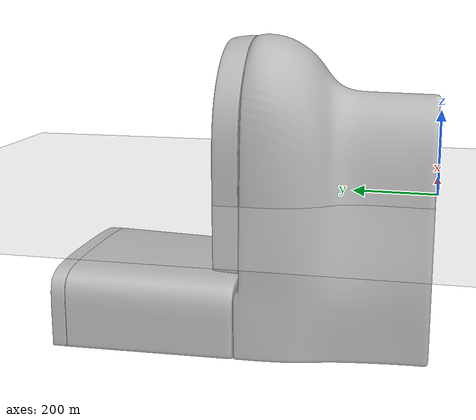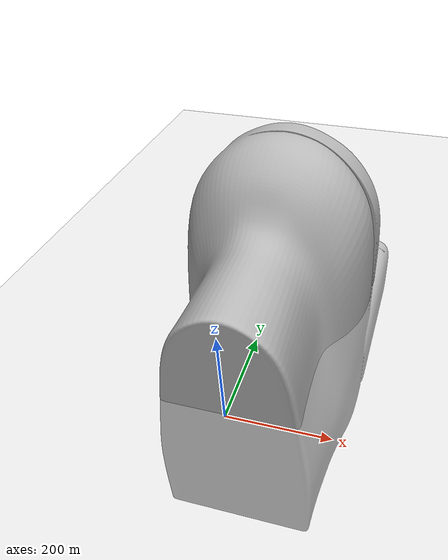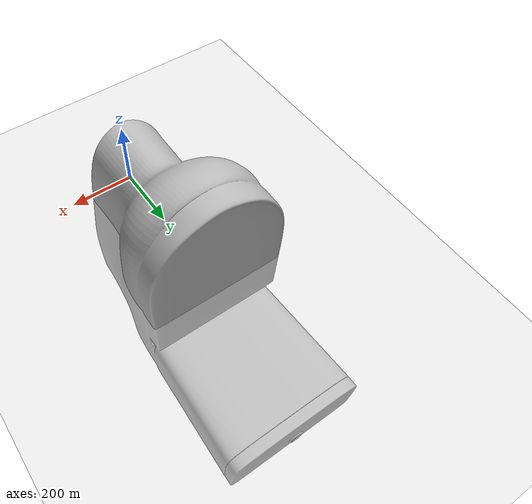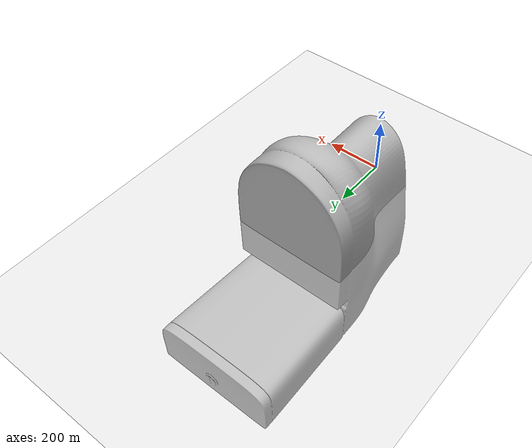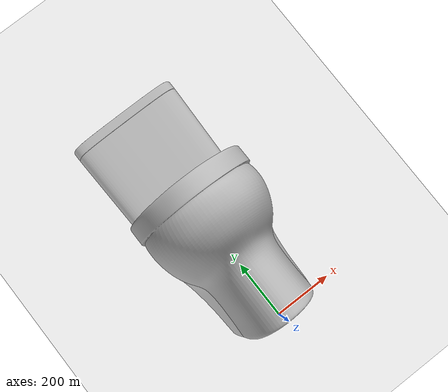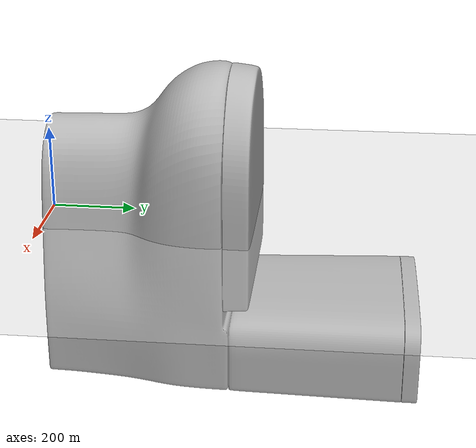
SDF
<sdf version="1.6">
 <world name="world">
  <gravity>0 0 -9.8</gravity>
  <physics default="0" name="default_physics" type="ode">
   <max_step_size>0.001</max_step_size>
   <real_time_factor>1</real_time_factor>
   <real_time_update_rate>1000</real_time_update_rate>
  </physics>
  <include><uri>model://ground_plane</uri></include>
  <model name="camera1">
   <static>true</static>
   <pose>4.4 5 6.4 0 1.57 1.57</pose>
   <link name="link1">
    <visual name="visual"><geometry><box><size>0.1 0.1 0.1</size></box></geometry></visual>
    <sensor name="my_camera1" type="camera">
     <camera>
      <save enabled="true"><path>/home/roya/catkin_ws/src/risk_aware_planning/src/results/camera1</path></save>
      <horizontal_fov>1.047</horizontal_fov>
      <image><width>1920</width><height>1080</height></image>
      <clip><near>0.1</near><far>50</far></clip>
     </camera>
     <always_on>1</always_on>
     <update_rate>30</update_rate>
    </sensor>
   </link>
  </model>
  <model name="camera2">
   <static>true</static>
   <pose>1.86539 6.39185 2.8575 0 0.657796 -0.349976</pose>
   <link name="link2">
    <visual name="visual"><geometry><box><size>0.01 0.01 0.01</size></box></geometry></visual>
    <sensor name="my_camera2" type="camera">
     <camera>
      <save enabled="true"><path>/home/roya/catkin_ws/src/risk_aware_planning/src/results/camera2</path></save>
      <horizontal_fov>1.047</horizontal_fov>
      <image><width>1920</width><height>1080</height></image>
      <clip><near>0.1</near><far>50</far></clip>
     </camera>
     <always_on>1</always_on>
     <update_rate>30</update_rate>
    </sensor>
   </link>
  </model>
  <model name="camera3">
   <static>true</static>
   <pose>6.62566 6.24361 2.60285 0 0.541796 -2.60116</pose>
   <link name="link3">
    <visual name="visual"><geometry><box><size>0.01 0.01 0.01</size></box></geometry></visual>
    <sensor name="my_camera3" type="camera">
     <camera>
      <save enabled="true"><path>/home/roya/catkin_ws/src/risk_aware_planning/src/results/camera3</path></save>
      <horizontal_fov>1.047</horizontal_fov>
      <image><width>1920</width><height>1080</height></image>
      <clip><near>0.1</near><far>50</far></clip>
     </camera>
     <always_on>1</always_on>
     <update_rate>30</update_rate>
    </sensor>
   </link>
  </model>
  <model name="P22_IF_walls"><include><uri>model://P22_IF_walls</uri></include><pose>5 5 0 0 0 0</pose></model>
  <model name="Toilet">
   <include><uri>model://Toilet</uri><static>false</static></include>
   <pose>2.3 4.6 0 0 0 0</pose>
  </model>
  <light name="ceiling_light_0" type="spot">
   <pose>5 5 7 0 0 0</pose>
   <diffuse>0.494118 0.494118 0.494118 1</diffuse>
   <specular>0.0941176 0.0941176 0.0941176 1</specular>
   <direction>0 0 -1</direction>
   <attenuation>
    <range>20</range>
    <constant>0.8</constant>
    <linear>0.1</linear>
    <quadratic>0.001</quadratic>
   </attenuation>
   <cast_shadows>0</cast_shadows>
   <spot><inner_angle>1.0</inner_angle><outer_angle>2.5</outer_angle><falloff>1</falloff></spot>
  </light>
 </world>
</sdf>

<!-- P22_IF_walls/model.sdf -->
<sdf version='1.6'>
  <model name='P22-IF'>
    <pose frame=''>-0.880315 -0.256219 0 0 -0 0</pose>
    <link name='Wall_12'>
      <collision name='Wall_12_Collision'>
        <geometry>
          <box>
            <size>1 0.12 2.5</size>
          </box>
        </geometry>
        <pose frame=''>0 0 1.25 0 -0 0</pose>
      </collision>
      <visual name='Wall_12_Visual'>
        <pose frame=''>0 0 1.25 0 -0 0</pose>
        <geometry>
          <box>
            <size>1 0.12 2.5</size>
          </box>
        </geometry>
        <material>
          <script>
            <uri>file://media/materials/scripts/gazebo.material</uri>
            <name>Gazebo/Grey</name>
          </script>
          <ambient>1 1 1 1</ambient>
        </material>
        <meta>
          <layer>0</layer>
        </meta>
      </visual>
      <pose frame=''>-1.604369 0.42219 0 0 -0 0</pose>
    </link>
    <link name='Wall_13'>
      <pose frame=''>-0.56 0.03 0 0 -0 -0.62</pose>
      <visual name='Wall_13_Visual_0'>
        <pose frame=''>-0.6 0 1.25 0 -0 0</pose>
        <geometry>
          <box>
            <size>0.2 0.12 2.5</size>
          </box>
        </geometry>
        <material>
          <script>
            <uri>file://media/materials/scripts/gazebo.material</uri>
            <name>Gazebo/Grey</name>
          </script>
          <ambient>1 1 1 1</ambient>
        </material>
        <meta>
          <layer>0</layer>
        </meta>
      </visual>
      <collision name='Wall_13_Collision_0'>
        <geometry>
          <box>
            <size>0.2 0.12 2.5</size>
          </box>
        </geometry>
        <pose frame=''>-0.6 0 1.25 0 -0 0</pose>
      </collision>
      <visual name='Wall_13_Visual_1'>
        <pose frame=''>0.43 0 1.25 0 -0 0</pose>
        <geometry>
          <box>
            <size>0.3 0.12 2.5</size>
          </box>
        </geometry>
        <material>
          <script>
            <uri>file://media/materials/scripts/gazebo.material</uri>
            <name>Gazebo/Grey</name>
          </script>
          <ambient>1 1 1 1</ambient>
        </material>
        <meta>
          <layer>0</layer>
        </meta>
      </visual>
      <collision name='Wall_13_Collision_1'>
        <geometry>
          <box>
            <size>0.3 0.12 2.5</size>
          </box>
        </geometry>
        <pose frame=''>0.43 0 1.25 0 -0 0</pose>
      </collision>
      <visual name='Wall_13_Visual_2'>
        <pose frame=''>-0.173235 0 2.25 0 -0 0</pose>
        <geometry>
          <box>
            <size>1 0.12 0.5</size>
          </box>
        </geometry>
        <material>
          <script>
            <uri>file://media/materials/scripts/gazebo.material</uri>
            <name>Gazebo/Grey</name>
          </script>
          <ambient>1 1 1 1</ambient>
        </material>
        <meta>
          <layer>0</layer>
        </meta>
      </visual>
      <collision name='Wall_13_Collision_2'>
        <geometry>
          <box>
            <size>1 0.12 0.5</size>
          </box>
        </geometry>
        <pose frame=''>-0.173235 0 2.25 0 -0 0</pose>
      </collision>
    </link>
    <link name='Wall_14'>
      <collision name='Wall_14_Collision'>
        <geometry>
          <box>
            <size>1 0.12 2.5</size>
          </box>
        </geometry>
        <pose frame=''>0 0 1.25 0 -0 0</pose>
      </collision>
      <visual name='Wall_14_Visual'>
        <pose frame=''>0 0 1.25 0 -0 0</pose>
        <geometry>
          <box>
            <size>1 0.12 2.5</size>
          </box>
          <scale>0.8 0.8 0.8</scale>
        </geometry>
        <material>
          <script>
            <uri>file://media/materials/scripts/gazebo.material</uri>
            <name>Gazebo/Grey</name>
          </script>
          <ambient>1 1 1 1</ambient>
        </material>
        <meta>
          <layer>0</layer>
        </meta>
      </visual>
      <pose frame=''>-0.112685 -0.775378 0 0 -0 -1.5708</pose>
    </link>
    <link name='Wall_16'>
      <collision name='Wall_16_Collision'>
        <geometry>
          <box>
            <size>3 0.12 2.5</size>
          </box>
        </geometry>
        <pose frame=''>0 0 1.25 0 -0 0</pose>
      </collision>
      <visual name='Wall_16_Visual'>
        <pose frame=''>0 0 1.25 0 -0 0</pose>
        <geometry>
          <box>
            <size>3 0.12 2.5</size>
          </box>
        </geometry>
        <material>
          <script>
            <uri>file://media/materials/scripts/gazebo.material</uri>
            <name>Gazebo/Grey</name>
          </script>
          <ambient>1 1 1 1</ambient>
        </material>
        <meta>
          <layer>0</layer>
        </meta>
      </visual>
      <pose frame=''>1.29431 -1.30378 0 0 -0 3.14159</pose>
    </link>
    <link name='Wall_18'>
      <collision name='Wall_18_Collision'>
        <geometry>
          <box>
            <size>2.009428 0.12 2.5</size>
          </box>
        </geometry>
        <pose frame=''>0 0 1.25 0 -0 0</pose>
      </collision>
      <visual name='Wall_18_Visual'>
        <pose frame=''>0 0 1.25 0 -0 0</pose>
        <geometry>
          <box>
            <size>2.009428 0.12 2.5</size>
          </box>
        </geometry>
        <material>
          <script>
            <uri>file://media/materials/scripts/gazebo.material</uri>
            <name>Gazebo/CeilingTiled</name>
          </script>
          <ambient>0.921569 0.807843 0.615686 1</ambient>
        </material>
        <meta>
          <layer>0</layer>
        </meta>
      </visual>
      <pose frame=''>-1.12819 -1.30378 0 0 -0 3.14159</pose>
    </link>
    <link name='Wall_19'>
      <collision name='Wall_19_Collision'>
        <geometry>
          <box>
            <size>1.8 0.12 2.5</size>
          </box>
        </geometry>
        <pose frame=''>0 0 1.25 0 -0 0</pose>
      </collision>
      <visual name='Wall_19_Visual'>
        <pose frame=''>0 0 1.25 0 -0 0</pose>
        <geometry>
          <box>
            <size>1.8 0.12 2.5</size>
          </box>
        </geometry>
        <material>
          <script>
            <uri>file://media/materials/scripts/gazebo.material</uri>
            <name>Gazebo/CeilingTiled</name>
          </script>
          <ambient>0.921569 0.807843 0.615686 1</ambient>
        </material>
        <meta>
          <layer>0</layer>
        </meta>
      </visual>
      <pose frame=''>-2.12218 -0.475781 0 0 -0 1.58762</pose>
    </link>
    <link name='Wall_21'>
      <pose frame=''>-2.14219 1.1 0 0 -0 1.56898</pose>
      <visual name='Wall_21_Visual_0'>
        <pose frame=''>-0.55 0 1.25 0 -0 0</pose>
        <geometry>
          <box>
            <size>0.25 0.12 2.5</size>
          </box>
        </geometry>
        <material>
          <script>
            <uri>file://media/materials/scripts/gazebo.material</uri>
            <name>Gazebo/Grey</name>
          </script>
          <ambient>1 1 1 1</ambient>
        </material>
        <meta>
          <layer>0</layer>
        </meta>
      </visual>
      <collision name='Wall_21_Collision_0'>
        <geometry>
          <box>
            <size>0.25 0.12 2.5</size>
          </box>
        </geometry>
        <pose frame=''>-0.55 0 1.25 0 -0 0</pose>
      </collision>
      <visual name='Wall_21_Visual_1'>
        <pose frame=''>0.55 0 1.25 0 -0 0</pose>
        <geometry>
          <box>
            <size>0.25 0.12 2.5</size>
          </box>
        </geometry>
        <material>
          <script>
            <uri>file://media/materials/scripts/gazebo.material</uri>
            <name>Gazebo/Grey</name>
          </script>
          <ambient>1 1 1 1</ambient>
        </material>
        <meta>
          <layer>0</layer>
        </meta>
      </visual>
      <collision name='Wall_21_Collision_1'>
        <geometry>
          <box>
            <size>0.25 0.12 2.5</size>
          </box>
        </geometry>
        <pose frame=''>0.55 0 1.25 0 -0 0</pose>
      </collision>
      <visual name='Wall_21_Visual_2'>
        <pose frame=''>0 0 2.25 0 -0 0</pose>
        <geometry>
          <box>
            <size>1.1 0.12 0.5</size>
          </box>
        </geometry>
        <material>
          <script>
            <uri>file://media/materials/scripts/gazebo.material</uri>
            <name>Gazebo/Grey</name>
          </script>
          <ambient>1 1 1 1</ambient>
        </material>
        <meta>
          <layer>0</layer>
        </meta>
      </visual>
      <collision name='Wall_21_Collision_2'>
        <geometry>
          <box>
            <size>1 0.12 0.5</size>
          </box>
        </geometry>
        <pose frame=''>0 0 2.25 0 -0 0</pose>
      </collision>
    </link>
    <link name='Wall_23'>
      <pose frame=''>2.72681 0.000219 0 0 -0 -1.56248</pose>
      <visual name='Wall_23_Visual_0'>
        <pose frame=''>-1.58201 0 1.25 0 -0 0</pose>
        <geometry>
          <box>
            <size>0.504748 0.12 2.5</size>
          </box>
        </geometry>
        <material>
          <script>
            <uri>file://media/materials/scripts/gazebo.material</uri>
            <name>Gazebo/Grey</name>
          </script>
          <ambient>1 1 1 1</ambient>
        </material>
        <meta>
          <layer>0</layer>
        </meta>
      </visual>
      <collision name='Wall_23_Collision_0'>
        <geometry>
          <box>
            <size>0.504748 0.12 2.5</size>
          </box>
        </geometry>
        <pose frame=''>-1.58201 0 1.25 0 -0 0</pose>
      </collision>
      <visual name='Wall_23_Visual_1'>
        <pose frame=''>0.0077374 0 0.5 0 -0 0</pose>
        <geometry>
          <box>
            <size>2.7403 0.12 1</size>
          </box>
        </geometry>
        <material>
          <script>
            <uri>file://media/materials/scripts/gazebo.material</uri>
            <name>Gazebo/Grey</name>
          </script>
          <ambient>1 1 1 1</ambient>
        </material>
        <meta>
          <layer>0</layer>
        </meta>
      </visual>
      <collision name='Wall_23_Collision_1'>
        <geometry>
          <box>
            <size>2.7403 0.12 1</size>
          </box>
        </geometry>
        <pose frame=''>0.0077374 0 0.5 0 -0 0</pose>
      </collision>
      <visual name='Wall_23_Visual_2'>
        <pose frame=''>0.46254 0 1.75 0 -0 0</pose>
        <geometry>
          <box>
            <size>1.823368 0.12 1.5</size>
          </box>
        </geometry>
        <material>
          <script>
            <uri>file://media/materials/scripts/gazebo.material</uri>
            <name>Gazebo/Grey</name>
          </script>
          <ambient>1 1 1 1</ambient>
        </material>
        <meta>
          <layer>0</layer>
        </meta>
      </visual>
      <collision name='Wall_23_Collision_2'>
        <geometry>
          <box>
            <size>1.823368 0.12 1.5</size>
          </box>
        </geometry>
        <pose frame=''>0.46254 0 1.75 0 -0 0</pose>
      </collision>
      <visual name='Wall_23_Visual_3'>
        <pose frame=''>-0.919469 0 2.25 0 -0 0</pose>
        <geometry>
          <box>
            <size>1.053034 0.12 0.5</size>
          </box>
        </geometry>
        <material>
          <script>
            <uri>file://media/materials/scripts/gazebo.material</uri>
            <name>Gazebo/Grey</name>
          </script>
          <ambient>1 1 1 1</ambient>
        </material>
        <meta>
          <layer>0</layer>
        </meta>
      </visual>
      <collision name='Wall_23_Collision_3'>
        <geometry>
          <box>
            <size>1.053034 0.12 0.5</size>
          </box>
        </geometry>
        <pose frame=''>-0.919469 0 2.25 0 -0 0</pose>
      </collision>
    </link>
    <link name='Wall_7'>
      <collision name='Wall_7_Collision'>
        <geometry>
          <box>
            <size>4.9 0.12 2.5</size>
          </box>
        </geometry>
        <pose frame=''>0 0 1.25 0 -0 0</pose>
      </collision>
      <visual name='Wall_7_Visual'>
        <pose frame=''>0 0 1.25 0 -0 0</pose>
        <geometry>
          <box>
            <size>4.9 0.12 2.5</size>
          </box>
        </geometry>
        <material>
          <script>
            <uri>file://media/materials/scripts/gazebo.material</uri>
            <name>Gazebo/Grey</name>
          </script>
          <ambient>1 1 1 1</ambient>
        </material>
        <meta>
          <layer>0</layer>
        </meta>
      </visual>
      <pose frame=''>0.315685 1.80422 0 0 -0 0</pose>
    </link>
    <static>1</static>
  </model>
</sdf>

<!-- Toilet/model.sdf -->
<sdf version="1.6">
  <model name='Toilet'>
    <link name="body">
      <pose>0 0 0 0 0 0</pose>

      <visual name="visual">
        <geometry>
          <mesh>
            <uri>model://Toilet/meshes/toilet.obj</uri>
            <scale>10.75 10.75 10.75</scale>
          </mesh>
        </geometry>
      </visual>

      <collision name="collision">
        <geometry>
          <mesh>
            <uri>model://Toilet/meshes/toilet.obj</uri>
            <scale>10.75 10.75 10.75</scale>
          </mesh>
        </geometry>
      </collision>

    </link>
  </model>
</sdf>
